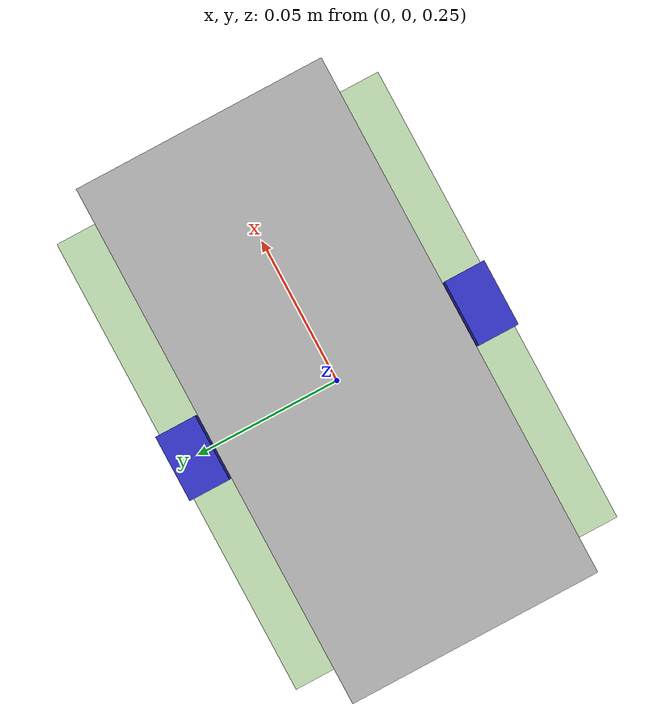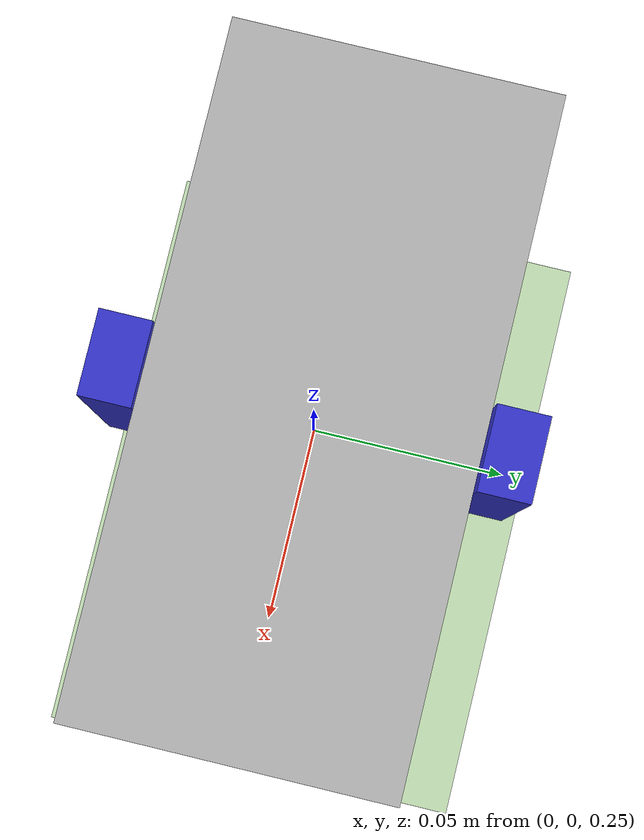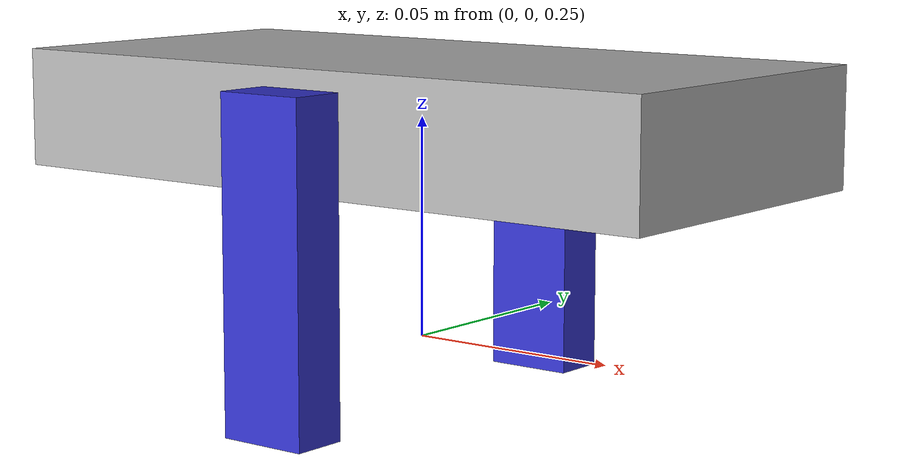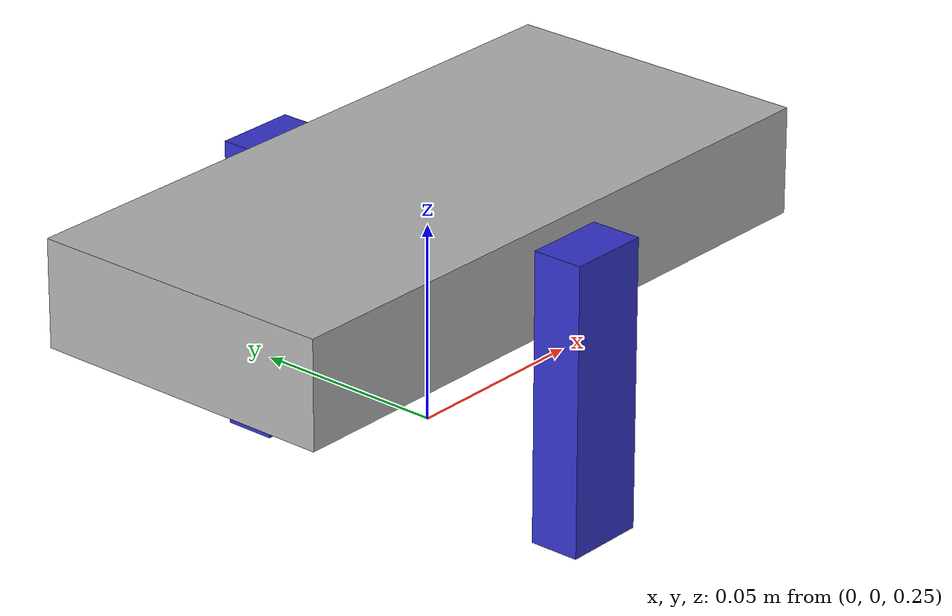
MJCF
<mujoco model="Growbot">
  <option gravity="0 0 -9.81" timestep="0.005" integrator="RK4" solver="CG" iterations="10" ls_iterations="10"/>

  <default>
    <geom friction="1.2 0.1 0.1" solref="0.005 1" solimp="0.99 0.99 0.01" condim="3"/>
    <joint damping="0.03" armature="0.002"/>
    <position kp="0.75" kv="0.05" ctrlrange="-1.57 1.57" forcerange="-1.5 1.5"/>
  </default>

  <worldbody>
    <light name="sun" pos="0 0 3" dir="0 0 -1" diffuse="0.8 0.8 0.8" specular="0.2 0.2 0.2" castshadow="true"/>
    <geom name="floor" type="plane" size="0 0 0.05" rgba="0.76 0.87 0.70 1"/>

    <body name="base_body" pos="0 0 0.3">
      <joint name="root_joint" type="free"/>
      <inertial pos="-0.030801 0 -0.003015" mass="0.427254" fullinertia="0.00020856 0.00068954 0.00086672 0 -0.00002086 0"/>
      <geom name="torso_geom" type="box" size="0.084 0.04 0.0136" pos="0 0 0" rgba="0.7 0.7 0.7 1"/>
      <geom name="battery_visual" type="box" size="0.035 0.035 0.007" pos="-0.047 0 -0.0046" contype="0" conaffinity="0" rgba="0.15 0.15 0.15 1"/>

      <body name="right_leg" pos="0.0 -0.0475 0.009325">
        <joint name="joint_1" type="hinge" axis="0 1 0" limited="true" range="-90 90"/>
        <geom name="lower_leg_1" type="box" size="0.0105 0.0065 0.0369998" pos="0 0 -0.0369998" mass="0.0263731" rgba="0.2 0.2 0.8 1"/>
      </body>

      <body name="left_leg" pos="0.0 0.0475 0.009325">
        <joint name="joint_2" type="hinge" axis="0 1 0" limited="true" range="-90 90"/>
        <geom name="lower_leg_2" type="box" size="0.0105 0.0065 0.0369998" pos="0 0 -0.0369998" mass="0.0263731" rgba="0.2 0.2 0.8 1"/>
      </body>
    </body>
  </worldbody>

  <actuator>
    <position name="servo_1" joint="joint_1"/>
    <position name="servo_2" joint="joint_2"/>
  </actuator>
</mujoco>
